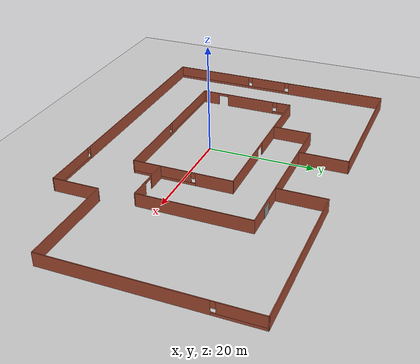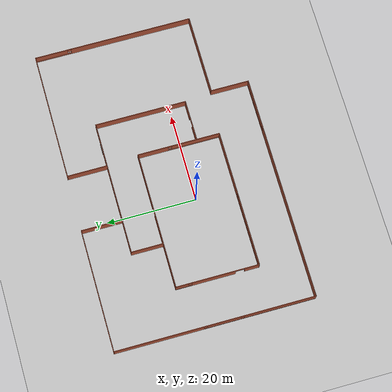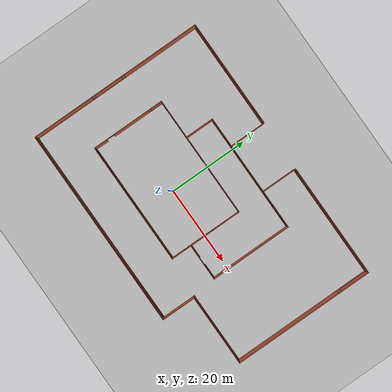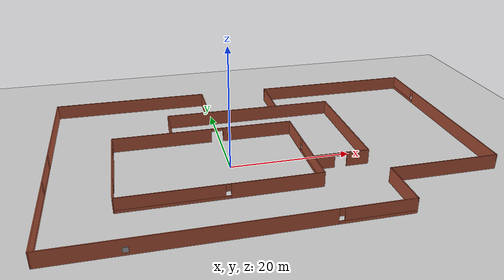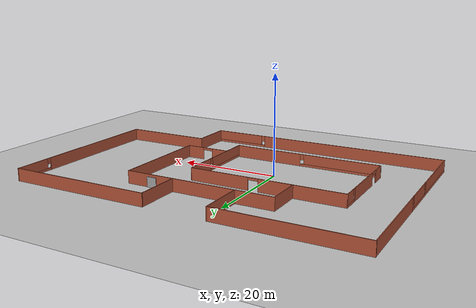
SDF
<sdf version="1.7">
 <world name="default">
  <light name="sun" type="directional">
   <pose>0 0 10 0 -0 0</pose>
   <diffuse>0.8 0.8 0.8 1</diffuse>
   <specular>0.2 0.2 0.2 1</specular>
   <attenuation>
    <range>1000</range>
    <constant>0.9</constant>
    <linear>0.01</linear>
    <quadratic>0.001</quadratic>
   </attenuation>
   <direction>-0.5 0.1 -0.9</direction>
   <spot><inner_angle>0</inner_angle><outer_angle>0</outer_angle><falloff>0</falloff></spot>
  </light>
  <model name="ground_plane">
   <static>1</static>
   <link name="link">
    <collision name="collision">
     <geometry><plane><normal>0 0 1</normal><size>100 100</size></plane></geometry>
     <surface>
      <contact><collide_bitmask>65535</collide_bitmask></contact>
      <friction><ode><mu>100</mu><mu2>50</mu2></ode></friction>
     </surface>
    </collision>
    <visual name="visual">
     <cast_shadows>0</cast_shadows>
     <geometry><plane><normal>0 0 1</normal><size>100 100</size></plane></geometry>
     <material>
      <script><uri>file://media/materials/scripts/gazebo.material</uri><name>Gazebo/Grey</name></script>
     </material>
    </visual>
   </link>
  </model>
  <gravity>0 0 -9.8</gravity>
  <magnetic_field>6e-06 2.3e-05 -4.2e-05</magnetic_field>
  <atmosphere type="adiabatic"/>
  <physics type="ode">
   <max_step_size>0.001</max_step_size>
   <real_time_factor>1</real_time_factor>
   <real_time_update_rate>1000</real_time_update_rate>
  </physics>
  <scene><ambient>0.4 0.4 0.4 1</ambient><background>0.7 0.7 0.7 1</background><shadows>1</shadows></scene>
  <audio><device>default</device></audio>
  <spherical_coordinates>
   <surface_model>EARTH_WGS84</surface_model>
   <latitude_deg>0</latitude_deg>
   <longitude_deg>0</longitude_deg>
   <elevation>0</elevation>
   <heading_deg>0</heading_deg>
  </spherical_coordinates>
  <model name="walls">
   <pose>6.39199 3.67323 0 0 -0 0</pose>
   <link name="Door_1">
    <collision name="Door_1_Collision">
     <geometry><box><size>2 0.17 2</size></box></geometry>
     <pose>0 0 1 0 -0 0</pose>
    </collision>
    <visual name="Door_1_Visual">
     <pose>0 0 1 0 -0 0</pose>
     <geometry><box><size>2 0.17 2</size></box></geometry>
     <material>
      <script><uri>file://media/materials/scripts/gazebo.material</uri><name>Gazebo/Grey</name></script>
     </material>
    </visual>
    <pose>10.1942 13.2313 0 0 -0 0</pose>
   </link>
   <link name="Wall_10">
    <pose>10.9071 -7.44673 0 0 -0 3.14159</pose>
    <visual name="Wall_10_Visual_0">
     <pose>-2.75455 0 1.25 0 -0 0</pose>
     <geometry><box><size>3.7409 0.15 2.5</size></box></geometry>
     <material>
      <script><uri>file://media/materials/scripts/gazebo.material</uri><name>Gazebo/Bricks</name></script>
      <ambient>1 1 1 1</ambient>
     </material>
     <meta><layer>0</layer></meta>
    </visual>
    <collision name="Wall_10_Collision_0">
     <geometry><box><size>3.7409 0.15 2.5</size></box></geometry>
     <pose>-2.75455 0 1.25 0 -0 0</pose>
    </collision>
    <visual name="Wall_10_Visual_1">
     <pose>2.87045 0 1.25 0 -0 0</pose>
     <geometry><box><size>3.5091 0.15 2.5</size></box></geometry>
     <material>
      <script><uri>file://media/materials/scripts/gazebo.material</uri><name>Gazebo/Bricks</name></script>
      <ambient>1 1 1 1</ambient>
     </material>
     <meta><layer>0</layer></meta>
    </visual>
    <collision name="Wall_10_Collision_1">
     <geometry><box><size>3.5091 0.15 2.5</size></box></geometry>
     <pose>2.87045 0 1.25 0 -0 0</pose>
    </collision>
    <visual name="Wall_10_Visual_2">
     <pose>0.1159 0 2.25 0 -0 0</pose>
     <geometry><box><size>2 0.15 0.5</size></box></geometry>
     <material>
      <script><uri>file://media/materials/scripts/gazebo.material</uri><name>Gazebo/Bricks</name></script>
      <ambient>1 1 1 1</ambient>
     </material>
     <meta><layer>0</layer></meta>
    </visual>
    <collision name="Wall_10_Collision_2">
     <geometry><box><size>2 0.15 0.5</size></box></geometry>
     <pose>0.1159 0 2.25 0 -0 0</pose>
    </collision>
   </link>
   <link name="Wall_14">
    <collision name="Wall_14_Collision">
     <geometry><box><size>9.25 0.15 2.5</size></box></geometry>
     <pose>0 0 1.25 0 -0 0</pose>
    </collision>
    <visual name="Wall_14_Visual">
     <pose>0 0 1.25 0 -0 0</pose>
     <geometry><box><size>9.25 0.15 2.5</size></box></geometry>
     <material>
      <script><uri>file://media/materials/scripts/gazebo.material</uri><name>Gazebo/Bricks</name></script>
      <ambient>1 1 1 1</ambient>
     </material>
     <meta><layer>0</layer></meta>
    </visual>
    <pose>-7.125 17.75 0 0 -0 1.5708</pose>
   </link>
   <link name="Wall_15">
    <collision name="Wall_15_Collision">
     <geometry><box><size>27.5 0.15 2.5</size></box></geometry>
     <pose>0 0 1.25 0 -0 0</pose>
    </collision>
    <visual name="Wall_15_Visual">
     <pose>0 0 1.25 0 -0 0</pose>
     <geometry><box><size>27.5 0.15 2.5</size></box></geometry>
     <material>
      <script><uri>file://media/materials/scripts/gazebo.material</uri><name>Gazebo/Bricks</name></script>
      <ambient>1 1 1 1</ambient>
     </material>
     <meta><layer>0</layer></meta>
    </visual>
    <pose>-20.8 22.3 0 0 -0 3.14159</pose>
   </link>
   <link name="Wall_16">
    <pose>-34.475 0 0 0 -0 -1.5708</pose>
    <visual name="Wall_16_Visual_0">
     <pose>-12.446 0 1.25 0 -0 0</pose>
     <geometry><box><size>19.858 0.15 2.5</size></box></geometry>
     <material>
      <script><uri>file://media/materials/scripts/gazebo.material</uri><name>Gazebo/Bricks</name></script>
      <ambient>1 1 1 1</ambient>
     </material>
     <meta><layer>0</layer></meta>
    </visual>
    <collision name="Wall_16_Collision_0">
     <geometry><box><size>19.858 0.15 2.5</size></box></geometry>
     <pose>-12.446 0 1.25 0 -0 0</pose>
    </collision>
    <visual name="Wall_16_Visual_1">
     <pose>9.92901 0 0.25 0 -0 0</pose>
     <geometry><box><size>24.892 0.15 0.5</size></box></geometry>
     <material>
      <script><uri>file://media/materials/scripts/gazebo.material</uri><name>Gazebo/Bricks</name></script>
      <ambient>1 1 1 1</ambient>
     </material>
     <meta><layer>0</layer></meta>
    </visual>
    <collision name="Wall_16_Collision_1">
     <geometry><box><size>24.892 0.15 0.5</size></box></geometry>
     <pose>9.92901 0 0.25 0 -0 0</pose>
    </collision>
    <visual name="Wall_16_Visual_2">
     <pose>1.98609 0 1.5 0 -0 0</pose>
     <geometry><box><size>7.40615 0.15 2</size></box></geometry>
     <material>
      <script><uri>file://media/materials/scripts/gazebo.material</uri><name>Gazebo/Bricks</name></script>
      <ambient>1 1 1 1</ambient>
     </material>
     <meta><layer>0</layer></meta>
    </visual>
    <collision name="Wall_16_Collision_2">
     <geometry><box><size>7.40615 0.15 2</size></box></geometry>
     <pose>1.98609 0 1.5 0 -0 0</pose>
    </collision>
    <visual name="Wall_16_Visual_3">
     <pose>14.4321 0 1.5 0 -0 0</pose>
     <geometry><box><size>15.8858 0.15 2</size></box></geometry>
     <material>
      <script><uri>file://media/materials/scripts/gazebo.material</uri><name>Gazebo/Bricks</name></script>
      <ambient>1 1 1 1</ambient>
     </material>
     <meta><layer>0</layer></meta>
    </visual>
    <collision name="Wall_16_Collision_3">
     <geometry><box><size>15.8858 0.15 2</size></box></geometry>
     <pose>14.4321 0 1.5 0 -0 0</pose>
    </collision>
    <visual name="Wall_16_Visual_4">
     <pose>-2.11699 0 1.9 0 -0 0</pose>
     <geometry><box><size>0.8 0.15 1.2</size></box></geometry>
     <material>
      <script><uri>file://media/materials/scripts/gazebo.material</uri><name>Gazebo/Bricks</name></script>
      <ambient>1 1 1 1</ambient>
     </material>
     <meta><layer>0</layer></meta>
    </visual>
    <collision name="Wall_16_Collision_4">
     <geometry><box><size>0.8 0.15 1.2</size></box></geometry>
     <pose>-2.11699 0 1.9 0 -0 0</pose>
    </collision>
    <visual name="Wall_16_Visual_5">
     <pose>6.08917 0 1.9 0 -0 0</pose>
     <geometry><box><size>0.8 0.15 1.2</size></box></geometry>
     <material>
      <script><uri>file://media/materials/scripts/gazebo.material</uri><name>Gazebo/Bricks</name></script>
      <ambient>1 1 1 1</ambient>
     </material>
     <meta><layer>0</layer></meta>
    </visual>
    <collision name="Wall_16_Collision_5">
     <geometry><box><size>0.8 0.15 1.2</size></box></geometry>
     <pose>6.08917 0 1.9 0 -0 0</pose>
    </collision>
   </link>
   <link name="Wall_17">
    <pose>-9.05 -22.3 0 0 -0 0</pose>
    <visual name="Wall_17_Visual_0">
     <pose>-5.79293 0 1.25 0 -0 0</pose>
     <geometry><box><size>39.4141 0.15 2.5</size></box></geometry>
     <material>
      <script><uri>file://media/materials/scripts/gazebo.material</uri><name>Gazebo/Bricks</name></script>
      <ambient>1 1 1 1</ambient>
     </material>
     <meta><layer>0</layer></meta>
    </visual>
    <collision name="Wall_17_Collision_0">
     <geometry><box><size>39.4141 0.15 2.5</size></box></geometry>
     <pose>-5.79293 0 1.25 0 -0 0</pose>
    </collision>
    <visual name="Wall_17_Visual_1">
     <pose>19.7071 0 0.25 0 -0 0</pose>
     <geometry><box><size>11.5859 0.15 0.5</size></box></geometry>
     <material>
      <script><uri>file://media/materials/scripts/gazebo.material</uri><name>Gazebo/Bricks</name></script>
      <ambient>1 1 1 1</ambient>
     </material>
     <meta><layer>0</layer></meta>
    </visual>
    <collision name="Wall_17_Collision_1">
     <geometry><box><size>11.5859 0.15 0.5</size></box></geometry>
     <pose>19.7071 0 0.25 0 -0 0</pose>
    </collision>
    <visual name="Wall_17_Visual_2">
     <pose>20.1071 0 1.5 0 -0 0</pose>
     <geometry><box><size>10.7859 0.15 2</size></box></geometry>
     <material>
      <script><uri>file://media/materials/scripts/gazebo.material</uri><name>Gazebo/Bricks</name></script>
      <ambient>1 1 1 1</ambient>
     </material>
     <meta><layer>0</layer></meta>
    </visual>
    <collision name="Wall_17_Collision_2">
     <geometry><box><size>10.7859 0.15 2</size></box></geometry>
     <pose>20.1071 0 1.5 0 -0 0</pose>
    </collision>
    <visual name="Wall_17_Visual_3">
     <pose>14.3141 0 1.9 0 -0 0</pose>
     <geometry><box><size>0.8 0.15 1.2</size></box></geometry>
     <material>
      <script><uri>file://media/materials/scripts/gazebo.material</uri><name>Gazebo/Bricks</name></script>
      <ambient>1 1 1 1</ambient>
     </material>
     <meta><layer>0</layer></meta>
    </visual>
    <collision name="Wall_17_Collision_3">
     <geometry><box><size>0.8 0.15 1.2</size></box></geometry>
     <pose>14.3141 0 1.9 0 -0 0</pose>
    </collision>
   </link>
   <link name="Wall_18">
    <collision name="Wall_18_Collision">
     <geometry><box><size>8.75 0.15 2.5</size></box></geometry>
     <pose>0 0 1.25 0 -0 0</pose>
    </collision>
    <visual name="Wall_18_Visual">
     <pose>0 0 1.25 0 -0 0</pose>
     <geometry><box><size>8.75 0.15 2.5</size></box></geometry>
     <material>
      <script><uri>file://media/materials/scripts/gazebo.material</uri><name>Gazebo/Bricks</name></script>
      <ambient>1 1 1 1</ambient>
     </material>
     <meta><layer>0</layer></meta>
    </visual>
    <pose>16.375 -18 0 0 -0 1.5708</pose>
   </link>
   <link name="Wall_19">
    <collision name="Wall_19_Collision">
     <geometry><box><size>18.25 0.15 2.5</size></box></geometry>
     <pose>0 0 1.25 0 -0 0</pose>
    </collision>
    <visual name="Wall_19_Visual">
     <pose>0 0 1.25 0 -0 0</pose>
     <geometry><box><size>18.25 0.15 2.5</size></box></geometry>
     <material>
      <script><uri>file://media/materials/scripts/gazebo.material</uri><name>Gazebo/Bricks</name></script>
      <ambient>1 1 1 1</ambient>
     </material>
     <meta><layer>0</layer></meta>
    </visual>
    <pose>25.425 -13.7 0 0 -0 0</pose>
   </link>
   <link name="Wall_2">
    <pose>-9.20103 5.97243 0 0 -0 0</pose>
    <visual name="Wall_2_Visual_0">
     <pose>-7.07744 0 1.25 0 -0 0</pose>
     <geometry><box><size>16.8451 0.15 2.5</size></box></geometry>
     <material>
      <script><uri>file://media/materials/scripts/gazebo.material</uri><name>Gazebo/Bricks</name></script>
      <ambient>1 1 1 1</ambient>
     </material>
     <meta><layer>0</layer></meta>
    </visual>
    <collision name="Wall_2_Collision_0">
     <geometry><box><size>16.8451 0.15 2.5</size></box></geometry>
     <pose>-7.07744 0 1.25 0 -0 0</pose>
    </collision>
    <visual name="Wall_2_Visual_1">
     <pose>9.42256 0 1.25 0 -0 0</pose>
     <geometry><box><size>12.1549 0.15 2.5</size></box></geometry>
     <material>
      <script><uri>file://media/materials/scripts/gazebo.material</uri><name>Gazebo/Bricks</name></script>
      <ambient>1 1 1 1</ambient>
     </material>
     <meta><layer>0</layer></meta>
    </visual>
    <collision name="Wall_2_Collision_1">
     <geometry><box><size>12.1549 0.15 2.5</size></box></geometry>
     <pose>9.42256 0 1.25 0 -0 0</pose>
    </collision>
    <visual name="Wall_2_Visual_2">
     <pose>2.34513 0 2.25 0 -0 0</pose>
     <geometry><box><size>2 0.15 0.5</size></box></geometry>
     <material>
      <script><uri>file://media/materials/scripts/gazebo.material</uri><name>Gazebo/Bricks</name></script>
      <ambient>1 1 1 1</ambient>
     </material>
     <meta><layer>0</layer></meta>
    </visual>
    <collision name="Wall_2_Collision_2">
     <geometry><box><size>2 0.15 0.5</size></box></geometry>
     <pose>2.34513 0 2.25 0 -0 0</pose>
    </collision>
   </link>
   <link name="Wall_20">
    <pose>34.475 4.225 0 0 -0 1.5708</pose>
    <visual name="Wall_20_Visual_0">
     <pose>-4.13085 0 1.25 0 -0 0</pose>
     <geometry><box><size>27.7383 0.15 2.5</size></box></geometry>
     <material>
      <script><uri>file://media/materials/scripts/gazebo.material</uri><name>Gazebo/Bricks</name></script>
      <ambient>1 1 1 1</ambient>
     </material>
     <meta><layer>0</layer></meta>
    </visual>
    <collision name="Wall_20_Collision_0">
     <geometry><box><size>27.7383 0.15 2.5</size></box></geometry>
     <pose>-4.13085 0 1.25 0 -0 0</pose>
    </collision>
    <visual name="Wall_20_Visual_1">
     <pose>13.8692 0 0.25 0 -0 0</pose>
     <geometry><box><size>8.2617 0.15 0.5</size></box></geometry>
     <material>
      <script><uri>file://media/materials/scripts/gazebo.material</uri><name>Gazebo/Bricks</name></script>
      <ambient>1 1 1 1</ambient>
     </material>
     <meta><layer>0</layer></meta>
    </visual>
    <collision name="Wall_20_Collision_1">
     <geometry><box><size>8.2617 0.15 0.5</size></box></geometry>
     <pose>13.8692 0 0.25 0 -0 0</pose>
    </collision>
    <visual name="Wall_20_Visual_2">
     <pose>14.2692 0 1.5 0 -0 0</pose>
     <geometry><box><size>7.4617 0.15 2</size></box></geometry>
     <material>
      <script><uri>file://media/materials/scripts/gazebo.material</uri><name>Gazebo/Bricks</name></script>
      <ambient>1 1 1 1</ambient>
     </material>
     <meta><layer>0</layer></meta>
    </visual>
    <collision name="Wall_20_Collision_2">
     <geometry><box><size>7.4617 0.15 2</size></box></geometry>
     <pose>14.2692 0 1.5 0 -0 0</pose>
    </collision>
    <visual name="Wall_20_Visual_3">
     <pose>10.1383 0 1.9 0 -0 0</pose>
     <geometry><box><size>0.8 0.15 1.2</size></box></geometry>
     <material>
      <script><uri>file://media/materials/scripts/gazebo.material</uri><name>Gazebo/Bricks</name></script>
      <ambient>1 1 1 1</ambient>
     </material>
     <meta><layer>0</layer></meta>
    </visual>
    <collision name="Wall_20_Collision_3">
     <geometry><box><size>0.8 0.15 1.2</size></box></geometry>
     <pose>10.1383 0 1.9 0 -0 0</pose>
    </collision>
   </link>
   <link name="Wall_21">
    <collision name="Wall_21_Collision">
     <geometry><box><size>29 0.15 2.5</size></box></geometry>
     <pose>0 0 1.25 0 -0 0</pose>
    </collision>
    <visual name="Wall_21_Visual">
     <pose>0 0 1.25 0 -0 0</pose>
     <geometry><box><size>29 0.15 2.5</size></box></geometry>
     <material>
      <script><uri>file://media/materials/scripts/gazebo.material</uri><name>Gazebo/Bricks</name></script>
      <ambient>1 1 1 1</ambient>
     </material>
     <meta><layer>0</layer></meta>
    </visual>
    <pose>20.05 22.15 0 0 -0 3.14159</pose>
   </link>
   <link name="Wall_22">
    <collision name="Wall_22_Collision">
     <geometry><box><size>9 0.15 2.5</size></box></geometry>
     <pose>0 0 1.25 0 -0 0</pose>
    </collision>
    <visual name="Wall_22_Visual">
     <pose>0 0 1.25 0 -0 0</pose>
     <geometry><box><size>9 0.15 2.5</size></box></geometry>
     <material>
      <script><uri>file://media/materials/scripts/gazebo.material</uri><name>Gazebo/Bricks</name></script>
      <ambient>1 1 1 1</ambient>
     </material>
     <meta><layer>0</layer></meta>
    </visual>
    <pose>5.625 17.725 0 0 -0 -1.5708</pose>
   </link>
   <link name="Wall_3">
    <pose>6.22397 -3.32757 0 0 -0 -1.5708</pose>
    <visual name="Wall_3_Visual_0">
     <pose>-5.90629 0 1.25 0 -0 0</pose>
     <geometry><box><size>6.93742 0.15 2.5</size></box></geometry>
     <material>
      <script><uri>file://media/materials/scripts/gazebo.material</uri><name>Gazebo/Bricks</name></script>
      <ambient>1 1 1 1</ambient>
     </material>
     <meta><layer>0</layer></meta>
    </visual>
    <collision name="Wall_3_Collision_0">
     <geometry><box><size>6.93742 0.15 2.5</size></box></geometry>
     <pose>-5.90629 0 1.25 0 -0 0</pose>
    </collision>
    <visual name="Wall_3_Visual_1">
     <pose>3.46871 0 0.25 0 -0 0</pose>
     <geometry><box><size>11.8126 0.15 0.5</size></box></geometry>
     <material>
      <script><uri>file://media/materials/scripts/gazebo.material</uri><name>Gazebo/Bricks</name></script>
      <ambient>1 1 1 1</ambient>
     </material>
     <meta><layer>0</layer></meta>
    </visual>
    <collision name="Wall_3_Collision_1">
     <geometry><box><size>11.8126 0.15 0.5</size></box></geometry>
     <pose>3.46871 0 0.25 0 -0 0</pose>
    </collision>
    <visual name="Wall_3_Visual_2">
     <pose>3.86871 0 1.5 0 -0 0</pose>
     <geometry><box><size>11.0126 0.15 2</size></box></geometry>
     <material>
      <script><uri>file://media/materials/scripts/gazebo.material</uri><name>Gazebo/Bricks</name></script>
      <ambient>1 1 1 1</ambient>
     </material>
     <meta><layer>0</layer></meta>
    </visual>
    <collision name="Wall_3_Collision_2">
     <geometry><box><size>11.0126 0.15 2</size></box></geometry>
     <pose>3.86871 0 1.5 0 -0 0</pose>
    </collision>
    <visual name="Wall_3_Visual_3">
     <pose>-2.03758 0 1.9 0 -0 0</pose>
     <geometry><box><size>0.8 0.15 1.2</size></box></geometry>
     <material>
      <script><uri>file://media/materials/scripts/gazebo.material</uri><name>Gazebo/Bricks</name></script>
      <ambient>1 1 1 1</ambient>
     </material>
     <meta><layer>0</layer></meta>
    </visual>
    <collision name="Wall_3_Collision_3">
     <geometry><box><size>0.8 0.15 1.2</size></box></geometry>
     <pose>-2.03758 0 1.9 0 -0 0</pose>
    </collision>
   </link>
   <link name="Wall_4">
    <pose>-9.20103 -12.6276 0 0 -0 3.14159</pose>
    <visual name="Wall_4_Visual_0">
     <pose>-8.36286 0 1.25 0 -0 0</pose>
     <geometry><box><size>14.2743 0.15 2.5</size></box></geometry>
     <material>
      <script><uri>file://media/materials/scripts/gazebo.material</uri><name>Gazebo/Bricks</name></script>
      <ambient>1 1 1 1</ambient>
     </material>
     <meta><layer>0</layer></meta>
    </visual>
    <collision name="Wall_4_Collision_0">
     <geometry><box><size>14.2743 0.15 2.5</size></box></geometry>
     <pose>-8.36286 0 1.25 0 -0 0</pose>
    </collision>
    <visual name="Wall_4_Visual_1">
     <pose>7.13714 0 0.25 0 -0 0</pose>
     <geometry><box><size>16.7257 0.15 0.5</size></box></geometry>
     <material>
      <script><uri>file://media/materials/scripts/gazebo.material</uri><name>Gazebo/Bricks</name></script>
      <ambient>1 1 1 1</ambient>
     </material>
     <meta><layer>0</layer></meta>
    </visual>
    <collision name="Wall_4_Collision_1">
     <geometry><box><size>16.7257 0.15 0.5</size></box></geometry>
     <pose>7.13714 0 0.25 0 -0 0</pose>
    </collision>
    <visual name="Wall_4_Visual_2">
     <pose>7.53714 0 1.5 0 -0 0</pose>
     <geometry><box><size>15.9257 0.15 2</size></box></geometry>
     <material>
      <script><uri>file://media/materials/scripts/gazebo.material</uri><name>Gazebo/Bricks</name></script>
      <ambient>1 1 1 1</ambient>
     </material>
     <meta><layer>0</layer></meta>
    </visual>
    <collision name="Wall_4_Collision_2">
     <geometry><box><size>15.9257 0.15 2</size></box></geometry>
     <pose>7.53714 0 1.5 0 -0 0</pose>
    </collision>
    <visual name="Wall_4_Visual_3">
     <pose>-0.825728 0 1.9 0 -0 0</pose>
     <geometry><box><size>0.8 0.15 1.2</size></box></geometry>
     <material>
      <script><uri>file://media/materials/scripts/gazebo.material</uri><name>Gazebo/Bricks</name></script>
      <ambient>1 1 1 1</ambient>
     </material>
     <meta><layer>0</layer></meta>
    </visual>
    <collision name="Wall_4_Collision_3">
     <geometry><box><size>0.8 0.15 1.2</size></box></geometry>
     <pose>-0.825728 0 1.9 0 -0 0</pose>
    </collision>
   </link>
   <link name="Wall_5">
    <pose>-24.626 -3.32757 0 0 -0 1.5708</pose>
    <visual name="Wall_5_Visual_0">
     <pose>-7.70109 0 1.25 0 -0 0</pose>
     <geometry><box><size>3.34782 0.15 2.5</size></box></geometry>
     <material>
      <script><uri>file://media/materials/scripts/gazebo.material</uri><name>Gazebo/Bricks</name></script>
      <ambient>1 1 1 1</ambient>
     </material>
     <meta><layer>0</layer></meta>
    </visual>
    <collision name="Wall_5_Collision_0">
     <geometry><box><size>3.34782 0.15 2.5</size></box></geometry>
     <pose>-7.70109 0 1.25 0 -0 0</pose>
    </collision>
    <visual name="Wall_5_Visual_1">
     <pose>0.834172 0 1.25 0 -0 0</pose>
     <geometry><box><size>9.7227 0.15 2.5</size></box></geometry>
     <material>
      <script><uri>file://media/materials/scripts/gazebo.material</uri><name>Gazebo/Bricks</name></script>
      <ambient>1 1 1 1</ambient>
     </material>
     <meta><layer>0</layer></meta>
    </visual>
    <collision name="Wall_5_Collision_1">
     <geometry><box><size>9.7227 0.15 2.5</size></box></geometry>
     <pose>0.834172 0 1.25 0 -0 0</pose>
    </collision>
    <visual name="Wall_5_Visual_2">
     <pose>7.53526 0 0.25 0 -0 0</pose>
     <geometry><box><size>3.67948 0.15 0.5</size></box></geometry>
     <material>
      <script><uri>file://media/materials/scripts/gazebo.material</uri><name>Gazebo/Bricks</name></script>
      <ambient>1 1 1 1</ambient>
     </material>
     <meta><layer>0</layer></meta>
    </visual>
    <collision name="Wall_5_Collision_2">
     <geometry><box><size>3.67948 0.15 0.5</size></box></geometry>
     <pose>7.53526 0 0.25 0 -0 0</pose>
    </collision>
    <visual name="Wall_5_Visual_3">
     <pose>7.93526 0 1.5 0 -0 0</pose>
     <geometry><box><size>2.87948 0.15 2</size></box></geometry>
     <material>
      <script><uri>file://media/materials/scripts/gazebo.material</uri><name>Gazebo/Bricks</name></script>
      <ambient>1 1 1 1</ambient>
     </material>
     <meta><layer>0</layer></meta>
    </visual>
    <collision name="Wall_5_Collision_3">
     <geometry><box><size>2.87948 0.15 2</size></box></geometry>
     <pose>7.93526 0 1.5 0 -0 0</pose>
    </collision>
    <visual name="Wall_5_Visual_4">
     <pose>6.09552 0 1.9 0 -0 0</pose>
     <geometry><box><size>0.8 0.15 1.2</size></box></geometry>
     <material>
      <script><uri>file://media/materials/scripts/gazebo.material</uri><name>Gazebo/Bricks</name></script>
      <ambient>1 1 1 1</ambient>
     </material>
     <meta><layer>0</layer></meta>
    </visual>
    <collision name="Wall_5_Collision_4">
     <geometry><box><size>0.8 0.15 1.2</size></box></geometry>
     <pose>6.09552 0 1.9 0 -0 0</pose>
    </collision>
    <visual name="Wall_5_Visual_5">
     <pose>-5.02718 0 2.25 0 -0 0</pose>
     <geometry><box><size>2 0.15 0.5</size></box></geometry>
     <material>
      <script><uri>file://media/materials/scripts/gazebo.material</uri><name>Gazebo/Bricks</name></script>
      <ambient>1 1 1 1</ambient>
     </material>
     <meta><layer>0</layer></meta>
    </visual>
    <collision name="Wall_5_Collision_5">
     <geometry><box><size>2 0.15 0.5</size></box></geometry>
     <pose>-5.02718 0 2.25 0 -0 0</pose>
    </collision>
   </link>
   <link name="Wall_7">
    <collision name="Wall_7_Collision">
     <geometry><box><size>7.25 0.15 2.5</size></box></geometry>
     <pose>0 0 1.25 0 -0 0</pose>
    </collision>
    <visual name="Wall_7_Visual">
     <pose>0 0 1.25 0 -0 0</pose>
     <geometry><box><size>7.25 0.15 2.5</size></box></geometry>
     <material>
      <script><uri>file://media/materials/scripts/gazebo.material</uri><name>Gazebo/Bricks</name></script>
      <ambient>1 1 1 1</ambient>
     </material>
     <meta><layer>0</layer></meta>
    </visual>
    <pose>-14.6429 9.60327 0 0 -0 1.5708</pose>
   </link>
   <link name="Wall_8">
    <collision name="Wall_8_Collision">
     <geometry><box><size>30.25 0.15 2.5</size></box></geometry>
     <pose>0 0 1.25 0 -0 0</pose>
    </collision>
    <visual name="Wall_8_Visual">
     <pose>0 0 1.25 0 -0 0</pose>
     <geometry><box><size>30.25 0.15 2.5</size></box></geometry>
     <material>
      <script><uri>file://media/materials/scripts/gazebo.material</uri><name>Gazebo/Bricks</name></script>
      <ambient>1 1 1 1</ambient>
     </material>
     <meta><layer>0</layer></meta>
    </visual>
    <pose>0.407094 13.1533 0 0 -0 0</pose>
   </link>
   <link name="Wall_9">
    <collision name="Wall_9_Collision">
     <geometry><box><size>20.75 0.15 2.5</size></box></geometry>
     <pose>0 0 1.25 0 -0 0</pose>
    </collision>
    <visual name="Wall_9_Visual">
     <pose>0 0 1.25 0 -0 0</pose>
     <geometry><box><size>20.75 0.15 2.5</size></box></geometry>
     <material>
      <script><uri>file://media/materials/scripts/gazebo.material</uri><name>Gazebo/Bricks</name></script>
      <ambient>1 1 1 1</ambient>
     </material>
     <meta><layer>0</layer></meta>
    </visual>
    <pose>15.4571 2.85327 0 0 -0 -1.5708</pose>
   </link>
   <link name="Window_5">
    <collision name="Window_5_Collision">
     <geometry><box><size>0.8 0.17 0.8</size></box></geometry>
     <pose>0 0 0.4 0 -0 0</pose>
    </collision>
    <visual name="Window_5_Visual">
     <pose>0 0 0.4 0 -0 0</pose>
     <geometry><box><size>0.8 0.17 0.8</size></box></geometry>
     <material>
      <script><uri>file://media/materials/scripts/gazebo.material</uri><name>Gazebo/Grey</name></script>
     </material>
    </visual>
    <pose>-23.203 -22.3856 0.5 0 -0 0</pose>
   </link>
   <static>1</static>
  </model>
 </world>
</sdf>
